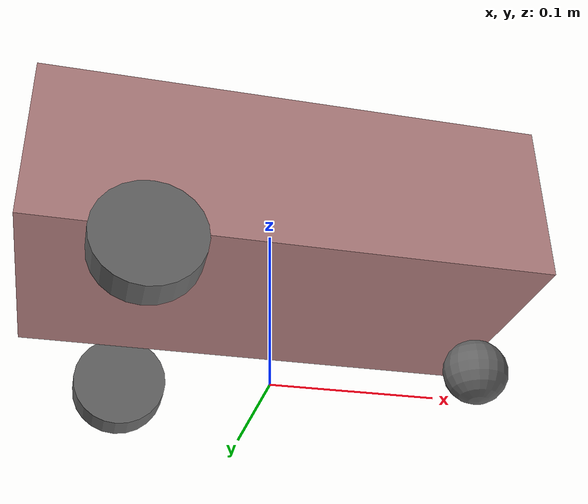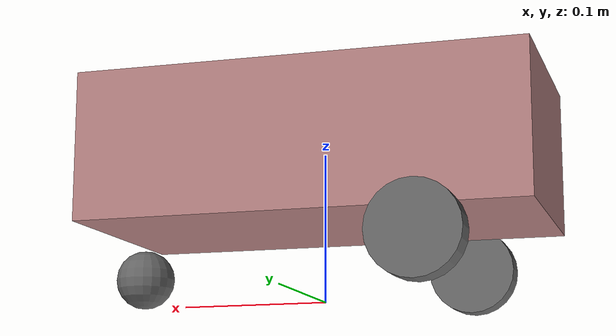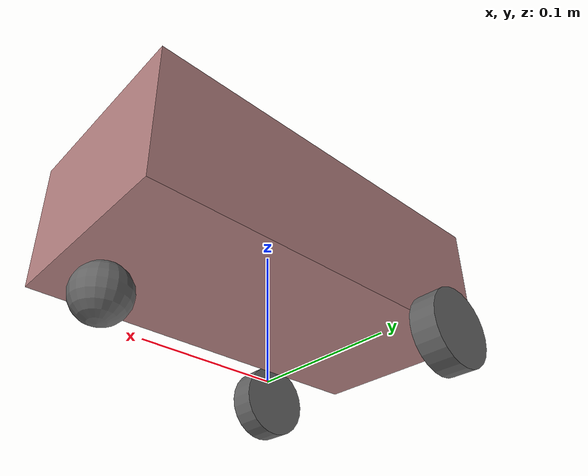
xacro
<?xml version="1.0"?>
<robot name="tortoisebot" xmlns:xacro="http://www.ros.org/wiki/xacro">

    <!-- ============ Reusable properties ============ -->
    <xacro:property name="base_length" value="0.3"/>
    <xacro:property name="base_width" value="0.15"/>
    <xacro:property name="base_height" value="0.1"/>
    <xacro:property name="base_mass" value="1.0"/>

    <xacro:property name="wheel_radius" value="0.03"/>
    <xacro:property name="wheel_thickness" value="0.02"/>
    <xacro:property name="wheel_mass" value="0.1"/>
    <xacro:property name="wheel_separation" value="0.188"/>
    <xacro:property name="wheel_x_offset" value="-0.0825"/>

    <xacro:property name="caster_radius" value="0.02"/>
    <xacro:property name="caster_mass" value="0.05"/>
    <xacro:property name="caster_x_offset" value="0.13"/>
    <xacro:property name="base_z_offset" value="0.1"/>

    <!-- ============ base_footprint ============ -->
    <link name="base_footprint"/>

    <!-- ============ base_link ============ -->
    <link name="base_link">
        <visual>
            <geometry>
                <box size="${base_length} ${base_width} ${base_height}"/>
            </geometry>
            <material name="Pink">
                <color rgba="0.7 0.5 0.5 1"/>
            </material>
        </visual>
        <collision>
            <geometry>
                <box size="${base_length} ${base_width} ${base_height}"/>
            </geometry>
        </collision>
        <inertial>
            <mass value="${base_mass}"/>
            <inertia
                ixx="${(base_mass/12.0) * (base_width*base_width + base_height*base_height)}"
                ixy="0.0" ixz="0.0"
                iyy="${(base_mass/12.0) * (base_length*base_length + base_height*base_height)}"
                iyz="0.0"
                izz="${(base_mass/12.0) * (base_length*base_length + base_width*base_width)}"/>
        </inertial>
    </link>

    <joint name="base_joint" type="fixed">
        <parent link="base_footprint"/>
        <child link="base_link"/>
        <origin xyz="0 0 ${base_z_offset}" rpy="0 0 0"/>
    </joint>

    <!-- ============ Right wheel ============ -->
    <link name="right_wheel">
        <visual>
            <geometry>
                <cylinder length="${wheel_thickness}" radius="${wheel_radius}"/>
            </geometry>
            <material name="Silver">
                <color rgba="0.4 0.4 0.4 1"/>
            </material>
        </visual>
        <collision>
            <geometry>
                <cylinder length="${wheel_thickness}" radius="${wheel_radius}"/>
            </geometry>
        </collision>
        <inertial>
            <mass value="${wheel_mass}"/>
            <inertia
                ixx="${(wheel_mass/12.0) * (3*wheel_radius*wheel_radius + wheel_thickness*wheel_thickness)}"
                ixy="0.0" ixz="0.0"
                iyy="${(wheel_mass/12.0) * (3*wheel_radius*wheel_radius + wheel_thickness*wheel_thickness)}"
                iyz="0.0"
                izz="${0.5 * wheel_mass * wheel_radius*wheel_radius}"/>
        </inertial>
    </link>

    <joint name="right_wheel_joint" type="continuous">
        <axis xyz="0 0 1"/>
        <parent link="base_link"/>
        <child link="right_wheel"/>
        <origin rpy="-1.5708 0 0" xyz="${wheel_x_offset} ${-wheel_separation/2} ${wheel_radius - base_z_offset}"/>
    </joint>

    <!-- ============ Left wheel ============ -->
    <link name="left_wheel">
        <visual>
            <geometry>
                <cylinder length="${wheel_thickness}" radius="${wheel_radius}"/>
            </geometry>
            <material name="Silver">
                <color rgba="0.4 0.4 0.4 1"/>
            </material>
        </visual>
        <collision>
            <geometry>
                <cylinder length="${wheel_thickness}" radius="${wheel_radius}"/>
            </geometry>
        </collision>
        <inertial>
            <mass value="${wheel_mass}"/>
            <inertia
                ixx="${(wheel_mass/12.0) * (3*wheel_radius*wheel_radius + wheel_thickness*wheel_thickness)}"
                ixy="0.0" ixz="0.0"
                iyy="${(wheel_mass/12.0) * (3*wheel_radius*wheel_radius + wheel_thickness*wheel_thickness)}"
                iyz="0.0"
                izz="${0.5 * wheel_mass * wheel_radius*wheel_radius}"/>
        </inertial>
    </link>

    <joint name="left_wheel_joint" type="continuous">
        <axis xyz="0 0 1"/>
        <parent link="base_link"/>
        <child link="left_wheel"/>
        <origin rpy="-1.5708 0 0" xyz="${wheel_x_offset} ${wheel_separation/2} ${wheel_radius - base_z_offset}"/>
    </joint>

    <!-- ============ Caster wheel (passive, front-mounted) ============ -->
    <link name="caster_wheel">
        <visual>
            <geometry>
                <sphere radius="${caster_radius}"/>
            </geometry>
            <material name="Silver">
                <color rgba="0.4 0.4 0.4 1"/>
            </material>
        </visual>
        <collision>
            <geometry>
                <sphere radius="${caster_radius}"/>
            </geometry>
        </collision>
        <inertial>
            <mass value="${caster_mass}"/>
            <inertia
                ixx="${0.4 * caster_mass * caster_radius*caster_radius}"
                ixy="0.0" ixz="0.0"
                iyy="${0.4 * caster_mass * caster_radius*caster_radius}"
                iyz="0.0"
                izz="${0.4 * caster_mass * caster_radius*caster_radius}"/>
        </inertial>
    </link>

    <joint name="caster_wheel_joint" type="fixed">
        <parent link="base_link"/>
        <child link="caster_wheel"/>
        <origin xyz="${caster_x_offset} 0 ${caster_radius - base_z_offset}" rpy="0 0 0"/>
    </joint>

    <!-- ============ Gazebo friction ============ -->
    <gazebo reference="left_wheel">
        <mu1>1.0</mu1>
        <mu2>1.0</mu2>
    </gazebo>
    <gazebo reference="right_wheel">
        <mu1>1.0</mu1>
        <mu2>1.0</mu2>
    </gazebo>
    <gazebo reference="caster_wheel">
        <mu1>0.001</mu1>
        <mu2>0.001</mu2>
    </gazebo>

    <!-- ============ Gazebo plugin: joint state publisher ============ -->
    <gazebo>
        <plugin name="tortoisebot_joint_state" filename="libgazebo_ros_joint_state_publisher.so">
            <ros>
                <remapping>~/out:=joint_states</remapping>
            </ros>
            <update_rate>50</update_rate>
            <joint_name>left_wheel_joint</joint_name>
            <joint_name>right_wheel_joint</joint_name>
        </plugin>
    </gazebo>

    <!-- ============ Gazebo plugin: differential drive ============ -->
    <gazebo>
        <plugin name="diff_drive" filename="libgazebo_ros_diff_drive.so">
            <left_joint>left_wheel_joint</left_joint>
            <right_joint>right_wheel_joint</right_joint>
            <wheel_separation>${wheel_separation}</wheel_separation>
            <wheel_diameter>${wheel_radius * 2}</wheel_diameter>
            <update_rate>50</update_rate>
            <publish_odom>true</publish_odom>
            <publish_odom_tf>true</publish_odom_tf>
            <odometry_frame>odom</odometry_frame>
            <robot_base_frame>base_footprint</robot_base_frame>
            <publish_wheel_tf>false</publish_wheel_tf>
            <publish_wheel_joint_state>false</publish_wheel_joint_state>
            <max_wheel_acceleration>1.0</max_wheel_acceleration>
            <command_topic>cmd_vel</command_topic>
        </plugin>
    </gazebo>

    <!-- Gazebo Classic ignores the rgba colors set in visual/material above;
         it only uses these script-based material references for its own renderer. -->
    <gazebo reference="base_link">
        <material>Gazebo/Purple</material>
    </gazebo>
    <gazebo reference="caster_wheel">
        <material>Gazebo/Grey</material>
    </gazebo>
    <gazebo reference="right_wheel">
        <material>Gazebo/Grey</material>
    </gazebo>
    <gazebo reference="left_wheel">
        <material>Gazebo/Grey</material>
    </gazebo>

</robot>
